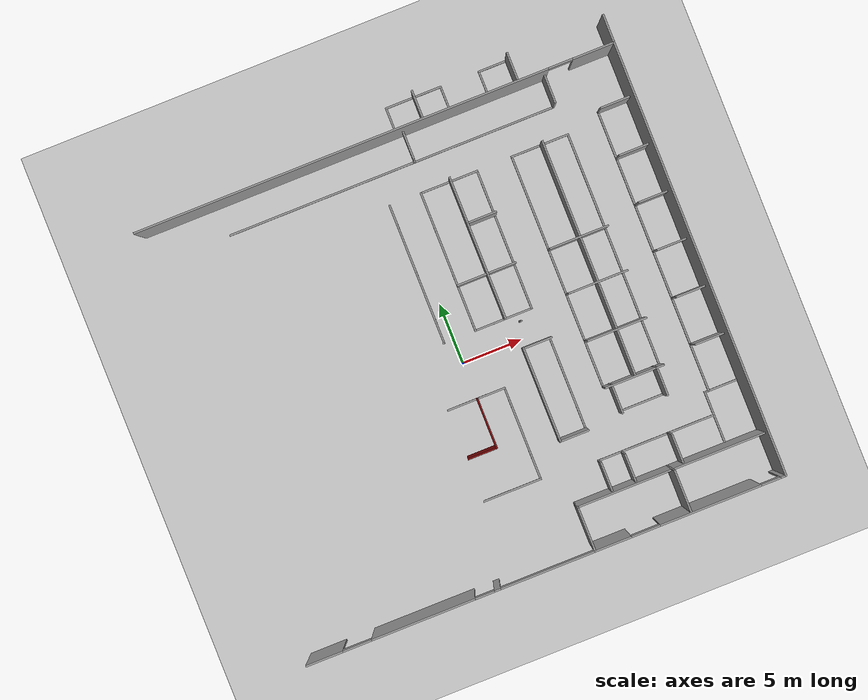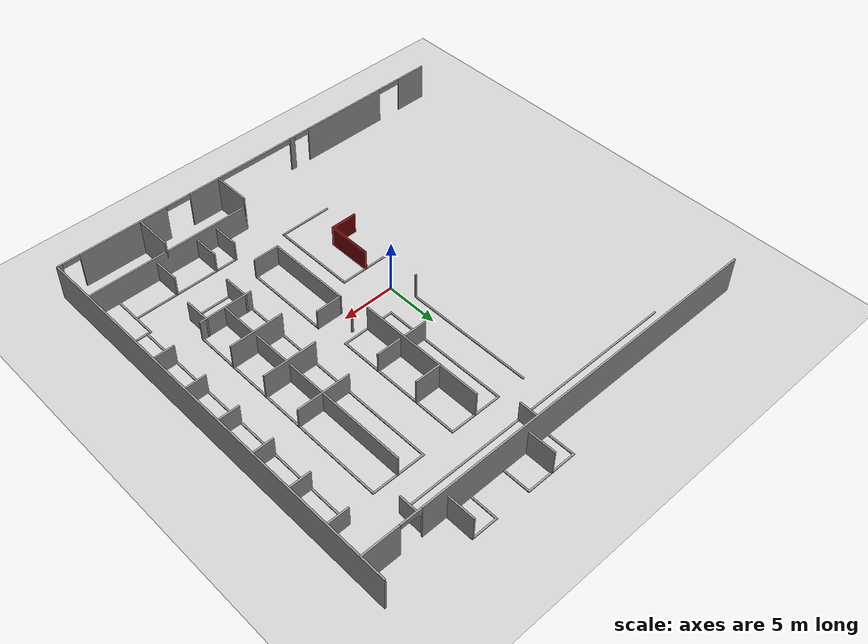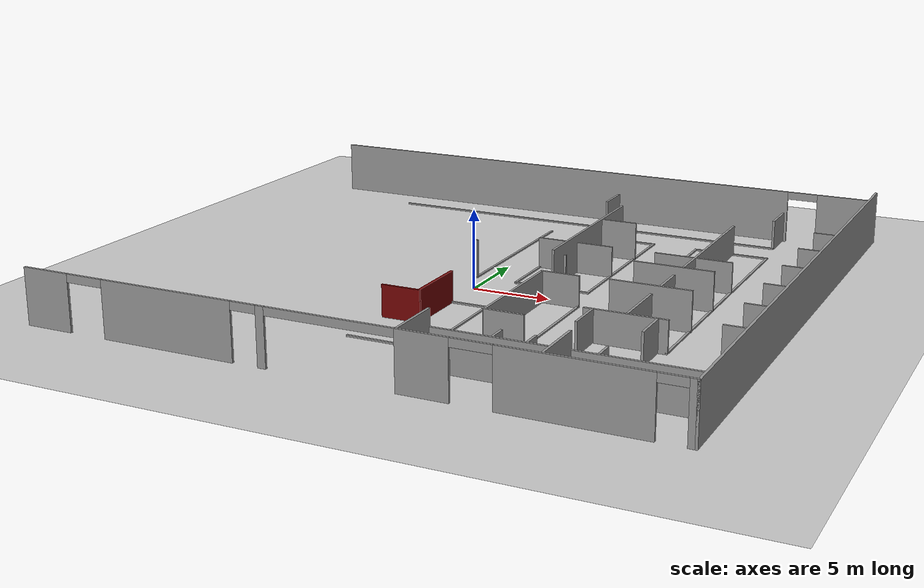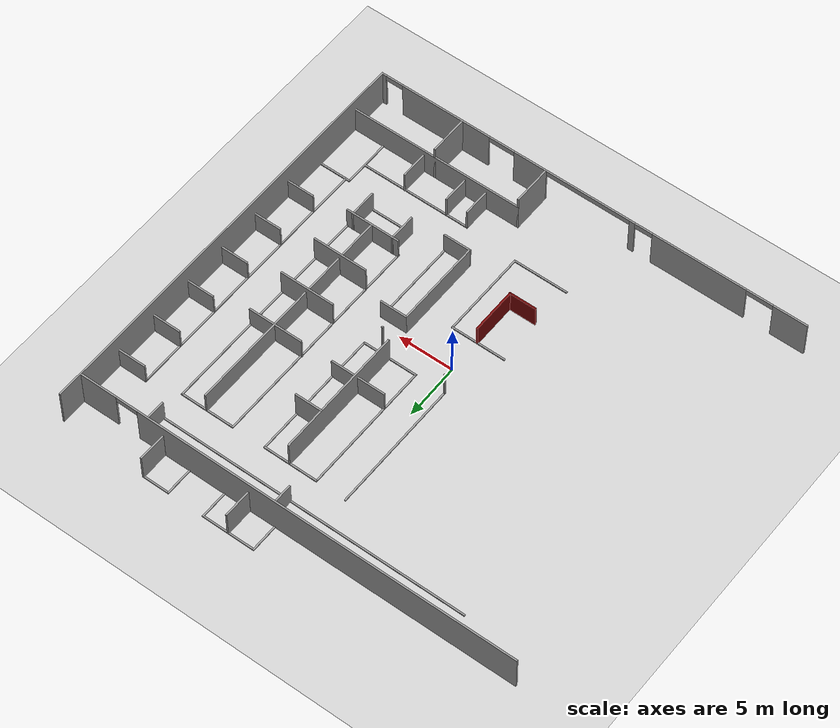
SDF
<sdf version="1.7">
 <world name="default">
  <model name="ground_plane">
   <static>1</static>
   <link name="link">
    <collision name="collision">
     <geometry><plane><normal>0 0 1</normal><size>100 100</size></plane></geometry>
     <surface><friction><ode><mu>100</mu><mu2>50</mu2></ode></friction></surface>
    </collision>
    <visual name="visual">
     <cast_shadows>0</cast_shadows>
     <geometry><plane><normal>0 0 1</normal><size>100 100</size></plane></geometry>
     <material>
      <script><uri>file://media/materials/scripts/gazebo.material</uri><name>Gazebo/Grey</name></script>
     </material>
    </visual>
   </link>
  </model>
  <model name="ATC_hall">
   <pose>0.064513 1.99679 0 0 -0 0</pose>
   <link name="Wall_17">
    <collision name="Wall_17_Collision">
     <geometry><box><size>3.5 0.15 3.5</size></box></geometry>
     <pose>0 0 1.75 0 -0 0</pose>
    </collision>
    <visual name="Wall_17_Visual">
     <pose>0 0 1.75 0 -0 0</pose>
     <geometry><box><size>3.5 0.15 3.5</size></box></geometry>
     <material>
      <script><uri>file://media/materials/scripts/gazebo.material</uri><name>Gazebo/Grey</name></script>
      <ambient>0.890196 0.890196 0.890196 1</ambient>
     </material>
     <meta><layer>0</layer></meta>
    </visual>
    <pose>4.08 -17.407 0 0 -0 1.5708</pose>
   </link>
   <link name="Wall_19">
    <collision name="Wall_19_Collision">
     <geometry><box><size>3.5 0.15 3.5</size></box></geometry>
     <pose>0 0 1.75 0 -0 0</pose>
    </collision>
    <visual name="Wall_19_Visual">
     <pose>0 0 1.75 0 -0 0</pose>
     <geometry><box><size>3.5 0.15 3.5</size></box></geometry>
     <material>
      <script><uri>file://media/materials/scripts/gazebo.material</uri><name>Gazebo/Grey</name></script>
      <ambient>0.890196 0.890196 0.890196 1</ambient>
     </material>
     <meta><layer>0</layer></meta>
    </visual>
    <pose>12.08 -17.407 0 0 -0 1.5708</pose>
   </link>
   <link name="Wall_195">
    <collision name="Wall_195_Collision">
     <geometry><box><size>2.5 0.15 2.5</size></box></geometry>
     <pose>0 0 1.25 0 -0 0</pose>
    </collision>
    <visual name="Wall_195_Visual">
     <pose>0 0 1.25 0 -0 0</pose>
     <geometry><box><size>2.5 0.15 2.5</size></box></geometry>
     <material>
      <script><uri>file://media/materials/scripts/gazebo.material</uri><name>Gazebo/Grey</name></script>
      <ambient>0 0 0 1</ambient>
     </material>
     <meta><layer>0</layer></meta>
    </visual>
    <pose>4.08 18.069 0 0 -0 1.5708</pose>
   </link>
   <link name="Wall_2">
    <pose>0.004999 -19.224 0 0 -0 0</pose>
    <visual name="Wall_2_Visual_0">
     <pose>-18.459 0 1.75 0 -0 0</pose>
     <geometry><box><size>3.082 0.15 3.5</size></box></geometry>
     <material>
      <script><uri>file://media/materials/scripts/gazebo.material</uri><name>Gazebo/Grey</name></script>
      <ambient>0.890196 0.890196 0.890196 1</ambient>
     </material>
     <meta><layer>0</layer></meta>
    </visual>
    <collision name="Wall_2_Collision_0">
     <geometry><box><size>3.082 0.15 3.5</size></box></geometry>
     <pose>-18.459 0 1.75 0 -0 0</pose>
    </collision>
    <visual name="Wall_2_Visual_1">
     <pose>-10.213 0 1.75 0 -0 0</pose>
     <geometry><box><size>8.61 0.15 3.5</size></box></geometry>
     <material>
      <script><uri>file://media/materials/scripts/gazebo.material</uri><name>Gazebo/Grey</name></script>
      <ambient>0.890196 0.890196 0.890196 1</ambient>
     </material>
     <meta><layer>0</layer></meta>
    </visual>
    <collision name="Wall_2_Collision_1">
     <geometry><box><size>8.61 0.15 3.5</size></box></geometry>
     <pose>-10.213 0 1.75 0 -0 0</pose>
    </collision>
    <visual name="Wall_2_Visual_2">
     <pose>-4.048 0 1.75 0 -0 0</pose>
     <geometry><box><size>0.519981 0.15 3.5</size></box></geometry>
     <material>
      <script><uri>file://media/materials/scripts/gazebo.material</uri><name>Gazebo/Grey</name></script>
      <ambient>0.890196 0.890196 0.890196 1</ambient>
     </material>
     <meta><layer>0</layer></meta>
    </visual>
    <collision name="Wall_2_Collision_2">
     <geometry><box><size>0.519981 0.15 3.5</size></box></geometry>
     <pose>-4.048 0 1.75 0 -0 0</pose>
    </collision>
    <visual name="Wall_2_Visual_3">
     <pose>5.54699 0 1.75 0 -0 0</pose>
     <geometry><box><size>3.07002 0.15 3.5</size></box></geometry>
     <material>
      <script><uri>file://media/materials/scripts/gazebo.material</uri><name>Gazebo/Grey</name></script>
      <ambient>0.890196 0.890196 0.890196 1</ambient>
     </material>
     <meta><layer>0</layer></meta>
    </visual>
    <collision name="Wall_2_Collision_3">
     <geometry><box><size>3.07002 0.15 3.5</size></box></geometry>
     <pose>5.54699 0 1.75 0 -0 0</pose>
    </collision>
    <visual name="Wall_2_Visual_4">
     <pose>13.6861 0 1.75 0 -0 0</pose>
     <geometry><box><size>8.40819 0.15 3.5</size></box></geometry>
     <material>
      <script><uri>file://media/materials/scripts/gazebo.material</uri><name>Gazebo/Grey</name></script>
      <ambient>0.890196 0.890196 0.890196 1</ambient>
     </material>
     <meta><layer>0</layer></meta>
    </visual>
    <collision name="Wall_2_Collision_4">
     <geometry><box><size>8.40819 0.15 3.5</size></box></geometry>
     <pose>13.6861 0 1.75 0 -0 0</pose>
    </collision>
    <visual name="Wall_2_Visual_5">
     <pose>19.7451 0 1.75 0 -0 0</pose>
     <geometry><box><size>0.509814 0.15 3.5</size></box></geometry>
     <material>
      <script><uri>file://media/materials/scripts/gazebo.material</uri><name>Gazebo/Grey</name></script>
      <ambient>0.890196 0.890196 0.890196 1</ambient>
     </material>
     <meta><layer>0</layer></meta>
    </visual>
    <collision name="Wall_2_Collision_5">
     <geometry><box><size>0.509814 0.15 3.5</size></box></geometry>
     <pose>19.7451 0 1.75 0 -0 0</pose>
    </collision>
    <visual name="Wall_2_Visual_6">
     <pose>-15.718 0 3.25 0 -0 0</pose>
     <geometry><box><size>2.4 0.15 0.5</size></box></geometry>
     <material>
      <script><uri>file://media/materials/scripts/gazebo.material</uri><name>Gazebo/Grey</name></script>
      <ambient>0.890196 0.890196 0.890196 1</ambient>
     </material>
     <meta><layer>0</layer></meta>
    </visual>
    <collision name="Wall_2_Collision_6">
     <geometry><box><size>2.4 0.15 0.5</size></box></geometry>
     <pose>-15.718 0 3.25 0 -0 0</pose>
    </collision>
    <visual name="Wall_2_Visual_7">
     <pose>-5.108 0 3.25 0 -0 0</pose>
     <geometry><box><size>1.6 0.15 0.5</size></box></geometry>
     <material>
      <script><uri>file://media/materials/scripts/gazebo.material</uri><name>Gazebo/Grey</name></script>
      <ambient>0.890196 0.890196 0.890196 1</ambient>
     </material>
     <meta><layer>0</layer></meta>
    </visual>
    <collision name="Wall_2_Collision_7">
     <geometry><box><size>1.6 0.15 0.5</size></box></geometry>
     <pose>-5.108 0 3.25 0 -0 0</pose>
    </collision>
    <visual name="Wall_2_Visual_8">
     <pose>0.111985 0 3.25 0 -0 0</pose>
     <geometry><box><size>7.8 0.15 0.5</size></box></geometry>
     <material>
      <script><uri>file://media/materials/scripts/gazebo.material</uri><name>Gazebo/Grey</name></script>
      <ambient>0.890196 0.890196 0.890196 1</ambient>
     </material>
     <meta><layer>0</layer></meta>
    </visual>
    <collision name="Wall_2_Collision_8">
     <geometry><box><size>7.8 0.15 0.5</size></box></geometry>
     <pose>0.111985 0 3.25 0 -0 0</pose>
    </collision>
    <visual name="Wall_2_Visual_9">
     <pose>8.282 0 3.25 0 -0 0</pose>
     <geometry><box><size>2.4 0.15 0.5</size></box></geometry>
     <material>
      <script><uri>file://media/materials/scripts/gazebo.material</uri><name>Gazebo/Grey</name></script>
      <ambient>0.890196 0.890196 0.890196 1</ambient>
     </material>
     <meta><layer>0</layer></meta>
    </visual>
    <collision name="Wall_2_Collision_9">
     <geometry><box><size>2.4 0.15 0.5</size></box></geometry>
     <pose>8.282 0 3.25 0 -0 0</pose>
    </collision>
    <visual name="Wall_2_Visual_10">
     <pose>18.6902 0 3.25 0 -0 0</pose>
     <geometry><box><size>1.6 0.15 0.5</size></box></geometry>
     <material>
      <script><uri>file://media/materials/scripts/gazebo.material</uri><name>Gazebo/Grey</name></script>
      <ambient>0.890196 0.890196 0.890196 1</ambient>
     </material>
     <meta><layer>0</layer></meta>
    </visual>
    <collision name="Wall_2_Collision_10">
     <geometry><box><size>1.6 0.15 0.5</size></box></geometry>
     <pose>18.6902 0 3.25 0 -0 0</pose>
    </collision>
   </link>
   <link name="Wall_228">
    <collision name="Wall_228_Collision">
     <geometry><box><size>2.5 0.15 0.1</size></box></geometry>
     <pose>0 0 0.05 0 -0 0</pose>
    </collision>
    <visual name="Wall_228_Visual">
     <pose>0 0 0.05 0 -0 0</pose>
     <geometry><box><size>2.5 0.15 0.1</size></box></geometry>
     <material>
      <script><uri>file://media/materials/scripts/gazebo.material</uri><name>Gazebo/Grey</name></script>
      <ambient>0.462745 0.462745 0.462745 1</ambient>
     </material>
     <meta><layer>0</layer></meta>
    </visual>
    <pose>2.905 19.244 0 0 -0 3.14159</pose>
   </link>
   <link name="Wall_23">
    <collision name="Wall_23_Collision">
     <geometry><box><size>16 0.15 2.5</size></box></geometry>
     <pose>0 0 1.25 0 -0 0</pose>
    </collision>
    <visual name="Wall_23_Visual">
     <pose>0 0 1.25 0 -0 0</pose>
     <geometry><box><size>16 0.15 2.5</size></box></geometry>
     <material>
      <script><uri>file://media/materials/scripts/gazebo.material</uri><name>Gazebo/Grey</name></script>
      <ambient>0.890196 0.890196 0.890196 1</ambient>
     </material>
     <meta><layer>0</layer></meta>
    </visual>
    <pose>12.005 -15.732 0 0 -0 0</pose>
   </link>
   <link name="Wall_230">
    <collision name="Wall_230_Collision">
     <geometry><box><size>2.5 0.15 0.1</size></box></geometry>
     <pose>0 0 0.05 0 -0 0</pose>
    </collision>
    <visual name="Wall_230_Visual">
     <pose>0 0 0.05 0 -0 0</pose>
     <geometry><box><size>2.5 0.15 0.1</size></box></geometry>
     <material>
      <script><uri>file://media/materials/scripts/gazebo.material</uri><name>Gazebo/Grey</name></script>
      <ambient>0.462745 0.462745 0.462745 1</ambient>
     </material>
     <meta><layer>0</layer></meta>
    </visual>
    <pose>1.73 18.069 0 0 -0 -1.5708</pose>
   </link>
   <link name="Wall_232">
    <collision name="Wall_232_Collision">
     <geometry><box><size>2.5 0.15 0.1</size></box></geometry>
     <pose>0 0 0.05 0 -0 0</pose>
    </collision>
    <visual name="Wall_232_Visual">
     <pose>0 0 0.05 0 -0 0</pose>
     <geometry><box><size>2.5 0.15 0.1</size></box></geometry>
     <material>
      <script><uri>file://media/materials/scripts/gazebo.material</uri><name>Gazebo/Grey</name></script>
      <ambient>0.454902 0.454902 0.454902 1</ambient>
     </material>
     <meta><layer>0</layer></meta>
    </visual>
    <pose>5.255 19.244 0 0 -0 0</pose>
   </link>
   <link name="Wall_234">
    <collision name="Wall_234_Collision">
     <geometry><box><size>2.5 0.15 0.1</size></box></geometry>
     <pose>0 0 0.05 0 -0 0</pose>
    </collision>
    <visual name="Wall_234_Visual">
     <pose>0 0 0.05 0 -0 0</pose>
     <geometry><box><size>2.5 0.15 0.1</size></box></geometry>
     <material>
      <script><uri>file://media/materials/scripts/gazebo.material</uri><name>Gazebo/Grey</name></script>
      <ambient>0.454902 0.454902 0.454902 1</ambient>
     </material>
     <meta><layer>0</layer></meta>
    </visual>
    <pose>6.43 18.069 0 0 -0 -1.5708</pose>
   </link>
   <link name="Wall_236">
    <collision name="Wall_236_Collision">
     <geometry><box><size>2.5 0.15 0.1</size></box></geometry>
     <pose>0 0 0.05 0 -0 0</pose>
    </collision>
    <visual name="Wall_236_Visual">
     <pose>0 0 0.05 0 -0 0</pose>
     <geometry><box><size>2.5 0.15 0.1</size></box></geometry>
     <material>
      <script><uri>file://media/materials/scripts/gazebo.material</uri><name>Gazebo/Grey</name></script>
      <ambient>0.454902 0.454902 0.454902 1</ambient>
     </material>
     <meta><layer>0</layer></meta>
    </visual>
    <pose>10.905 19.238 0 0 -0 3.14159</pose>
   </link>
   <link name="Wall_238">
    <collision name="Wall_238_Collision">
     <geometry><box><size>2.5 0.15 0.1</size></box></geometry>
     <pose>0 0 0.05 0 -0 0</pose>
    </collision>
    <visual name="Wall_238_Visual">
     <pose>0 0 0.05 0 -0 0</pose>
     <geometry><box><size>2.5 0.15 0.1</size></box></geometry>
     <material>
      <script><uri>file://media/materials/scripts/gazebo.material</uri><name>Gazebo/Grey</name></script>
      <ambient>0.454902 0.454902 0.454902 1</ambient>
     </material>
     <meta><layer>0</layer></meta>
    </visual>
    <pose>9.73 18.063 0 0 -0 -1.5708</pose>
   </link>
   <link name="Wall_308">
    <collision name="Wall_308_Collision">
     <geometry><box><size>28 0.15 0.1</size></box></geometry>
     <pose>0 0 0.05 0 -0 0</pose>
    </collision>
    <visual name="Wall_308_Visual">
     <pose>0 0 0.05 0 -0 0</pose>
     <geometry><box><size>28 0.15 0.1</size></box></geometry>
     <material>
      <script><uri>file://media/materials/scripts/gazebo.material</uri><name>Gazebo/Grey</name></script>
      <ambient>0.454902 0.454902 0.454902 1</ambient>
     </material>
     <meta><layer>0</layer></meta>
    </visual>
    <pose>0.304999 14.394 0 0 -0 -0.000287</pose>
   </link>
   <link name="Wall_314">
    <collision name="Wall_314_Collision">
     <geometry><box><size>2.5 0.15 2</size></box></geometry>
     <pose>0 0 1 0 -0 0</pose>
    </collision>
    <visual name="Wall_314_Visual">
     <pose>0 0 1 0 -0 0</pose>
     <geometry><box><size>2.5 0.15 2</size></box></geometry>
     <material>
      <script><uri>file://media/materials/scripts/gazebo.material</uri><name>Gazebo/Grey</name></script>
      <ambient>0 0 0 1</ambient>
     </material>
     <meta><layer>0</layer></meta>
    </visual>
    <pose>2.263 15.573 0 0 -0 -1.5708</pose>
   </link>
   <link name="Wall_323">
    <collision name="Wall_323_Collision">
     <geometry><box><size>2.5 0.15 2</size></box></geometry>
     <pose>0 0 1 0 -0 0</pose>
    </collision>
    <visual name="Wall_323_Visual">
     <pose>0 0 1 0 -0 0</pose>
     <geometry><box><size>2.5 0.15 2</size></box></geometry>
     <material>
      <script><uri>file://media/materials/scripts/gazebo.material</uri><name>Gazebo/Grey</name></script>
      <ambient>0 0 0 1</ambient>
     </material>
     <meta><layer>0</layer></meta>
    </visual>
    <pose>14.237 15.565 0 0 -0 -1.57675</pose>
   </link>
   <link name="Wall_331">
    <collision name="Wall_331_Collision">
     <geometry><box><size>12 0.15 0.1</size></box></geometry>
     <pose>0 0 0.05 0 -0 0</pose>
    </collision>
    <visual name="Wall_331_Visual">
     <pose>0 0 0.05 0 -0 0</pose>
     <geometry><box><size>12 0.15 0.1</size></box></geometry>
     <material>
      <script><uri>file://media/materials/scripts/gazebo.material</uri><name>Gazebo/Grey</name></script>
      <ambient>0.454902 0.454902 0.454902 1</ambient>
     </material>
     <meta><layer>0</layer></meta>
    </visual>
    <pose>-0.885001 5.963 0 0 -0 -1.5708</pose>
   </link>
   <link name="Wall_332">
    <collision name="Wall_332_Collision">
     <geometry><box><size>0.15 0.15 2.5</size></box></geometry>
     <pose>0 0 1.25 0 -0 0</pose>
    </collision>
    <visual name="Wall_332_Visual">
     <pose>0 0 1.25 0 -0 0</pose>
     <geometry><box><size>0.15 0.15 2.5</size></box></geometry>
     <material>
      <script><uri>file://media/materials/scripts/gazebo.material</uri><name>Gazebo/Grey</name></script>
      <ambient>1 1 1 1</ambient>
     </material>
     <meta><layer>0</layer></meta>
    </visual>
    <pose>-0.885001 0.037999 0 0 -0 0</pose>
   </link>
   <link name="Wall_354">
    <collision name="Wall_354_Collision">
     <geometry><box><size>12 0.15 0.1</size></box></geometry>
     <pose>0 0 0.05 0 -0 0</pose>
    </collision>
    <visual name="Wall_354_Visual">
     <pose>0 0 0.05 0 -0 0</pose>
     <geometry><box><size>12 0.15 0.1</size></box></geometry>
     <material>
      <script><uri>file://media/materials/scripts/gazebo.material</uri><name>Gazebo/Grey</name></script>
      <ambient>0.454902 0.454902 0.454902 1</ambient>
     </material>
     <meta><layer>0</layer></meta>
    </visual>
    <pose>1.815 5.963 0 0 -0 -1.5708</pose>
   </link>
   <link name="Wall_358">
    <collision name="Wall_358_Collision">
     <geometry><box><size>5 0.15 0.1</size></box></geometry>
     <pose>0 0 0.05 0 -0 0</pose>
    </collision>
    <visual name="Wall_358_Visual">
     <pose>0 0 0.05 0 -0 0</pose>
     <geometry><box><size>5 0.15 0.1</size></box></geometry>
     <material>
      <script><uri>file://media/materials/scripts/gazebo.material</uri><name>Gazebo/Grey</name></script>
      <ambient>0.454902 0.454902 0.454902 1</ambient>
     </material>
     <meta><layer>0</layer></meta>
    </visual>
    <pose>4.24 11.888 0 0 -0 0</pose>
   </link>
   <link name="Wall_360">
    <collision name="Wall_360_Collision">
     <geometry><box><size>12 0.15 0.1</size></box></geometry>
     <pose>0 0 0.05 0 -0 0</pose>
    </collision>
    <visual name="Wall_360_Visual">
     <pose>0 0 0.05 0 -0 0</pose>
     <geometry><box><size>12 0.15 0.1</size></box></geometry>
     <material>
      <script><uri>file://media/materials/scripts/gazebo.material</uri><name>Gazebo/Grey</name></script>
      <ambient>0.454902 0.454902 0.454902 1</ambient>
     </material>
     <meta><layer>0</layer></meta>
    </visual>
    <pose>6.665 5.963 0 0 -0 -1.5708</pose>
   </link>
   <link name="Wall_362">
    <collision name="Wall_362_Collision">
     <geometry><box><size>5 0.15 0.1</size></box></geometry>
     <pose>0 0 0.05 0 -0 0</pose>
    </collision>
    <visual name="Wall_362_Visual">
     <pose>0 0 0.05 0 -0 0</pose>
     <geometry><box><size>5 0.15 0.1</size></box></geometry>
     <material>
      <script><uri>file://media/materials/scripts/gazebo.material</uri><name>Gazebo/Grey</name></script>
      <ambient>0.454902 0.454902 0.454902 1</ambient>
     </material>
     <meta><layer>0</layer></meta>
    </visual>
    <pose>4.24 0.037999 0 0 -0 3.14159</pose>
   </link>
   <link name="Wall_364">
    <collision name="Wall_364_Collision">
     <geometry><box><size>5 0.15 2</size></box></geometry>
     <pose>0 0 1 0 -0 0</pose>
    </collision>
    <visual name="Wall_364_Visual">
     <pose>0 0 1 0 -0 0</pose>
     <geometry><box><size>5 0.15 2</size></box></geometry>
     <material>
      <script><uri>file://media/materials/scripts/gazebo.material</uri><name>Gazebo/Grey</name></script>
      <ambient>0 0 0 1</ambient>
     </material>
     <meta><layer>0</layer></meta>
    </visual>
    <pose>4.239 3.848 0 0 -0 0</pose>
   </link>
   <link name="Wall_366">
    <collision name="Wall_366_Collision">
     <geometry><box><size>11.9 0.15 2.5</size></box></geometry>
     <pose>0 0 1.25 0 -0 0</pose>
    </collision>
    <visual name="Wall_366_Visual">
     <pose>0 0 1.25 0 -0 0</pose>
     <geometry><box><size>11.9 0.15 2.5</size></box></geometry>
     <material>
      <script><uri>file://media/materials/scripts/gazebo.material</uri><name>Gazebo/Grey</name></script>
      <ambient>0 0 0 1</ambient>
     </material>
     <meta><layer>0</layer></meta>
    </visual>
    <pose>4.315 5.986 0 0 -0 -1.5708</pose>
   </link>
   <link name="Wall_368">
    <collision name="Wall_368_Collision">
     <geometry><box><size>5 0.15 0.1</size></box></geometry>
     <pose>0 0 0.05 0 -0 0</pose>
    </collision>
    <visual name="Wall_368_Visual">
     <pose>0 0 0.05 0 -0 0</pose>
     <geometry><box><size>5 0.15 0.1</size></box></geometry>
     <material>
      <script><uri>file://media/materials/scripts/gazebo.material</uri><name>Gazebo/Grey</name></script>
      <ambient>0.454902 0.454902 0.454902 1</ambient>
     </material>
     <meta><layer>0</layer></meta>
    </visual>
    <pose>12.09 11.923 0 0 -0 0</pose>
   </link>
   <link name="Wall_370">
    <collision name="Wall_370_Collision">
     <geometry><box><size>20 0.15 0.1</size></box></geometry>
     <pose>0 0 0.05 0 -0 0</pose>
    </collision>
    <visual name="Wall_370_Visual">
     <pose>0 0 0.05 0 -0 0</pose>
     <geometry><box><size>20 0.15 0.1</size></box></geometry>
     <material>
      <script><uri>file://media/materials/scripts/gazebo.material</uri><name>Gazebo/Grey</name></script>
      <ambient>0.454902 0.454902 0.454902 1</ambient>
     </material>
     <meta><layer>0</layer></meta>
    </visual>
    <pose>9.665 1.998 0 0 -0 -1.5708</pose>
   </link>
   <link name="Wall_372">
    <collision name="Wall_372_Collision">
     <geometry><box><size>20 0.15 0.1</size></box></geometry>
     <pose>0 0 0.05 0 -0 0</pose>
    </collision>
    <visual name="Wall_372_Visual">
     <pose>0 0 0.05 0 -0 0</pose>
     <geometry><box><size>20 0.15 0.1</size></box></geometry>
     <material>
      <script><uri>file://media/materials/scripts/gazebo.material</uri><name>Gazebo/Grey</name></script>
      <ambient>0.462745 0.462745 0.462745 1</ambient>
     </material>
     <meta><layer>0</layer></meta>
    </visual>
    <pose>14.515 1.998 0 0 -0 -1.5708</pose>
   </link>
   <link name="Wall_374">
    <collision name="Wall_374_Collision">
     <geometry><box><size>5 0.15 2</size></box></geometry>
     <pose>0 0 1 0 -0 0</pose>
    </collision>
    <visual name="Wall_374_Visual">
     <pose>0 0 1 0 -0 0</pose>
     <geometry><box><size>5 0.15 2</size></box></geometry>
     <material>
      <script><uri>file://media/materials/scripts/gazebo.material</uri><name>Gazebo/Grey</name></script>
      <ambient>0 0 0 1</ambient>
     </material>
     <meta><layer>0</layer></meta>
    </visual>
    <pose>12.09 -7.927 0 0 -0 0</pose>
   </link>
   <link name="Wall_376">
    <collision name="Wall_376_Collision">
     <geometry><box><size>2.5 0.15 2.5</size></box></geometry>
     <pose>0 0 1.25 0 -0 0</pose>
    </collision>
    <visual name="Wall_376_Visual">
     <pose>0 0 1.25 0 -0 0</pose>
     <geometry><box><size>2.5 0.15 2.5</size></box></geometry>
     <material>
      <script><uri>file://media/materials/scripts/gazebo.material</uri><name>Gazebo/Grey</name></script>
      <ambient>0 0 0 1</ambient>
     </material>
     <meta><layer>0</layer></meta>
    </visual>
    <pose>5.50645 8.06947 0 0 -0 0</pose>
   </link>
   <link name="Wall_378">
    <collision name="Wall_378_Collision">
     <geometry><box><size>5 0.15 2</size></box></geometry>
     <pose>0 0 1 0 -0 0</pose>
    </collision>
    <visual name="Wall_378_Visual">
     <pose>0 0 1 0 -0 0</pose>
     <geometry><box><size>5 0.15 2</size></box></geometry>
     <material>
      <script><uri>file://media/materials/scripts/gazebo.material</uri><name>Gazebo/Grey</name></script>
      <ambient>0 0 0 1</ambient>
     </material>
     <meta><layer>0</layer></meta>
    </visual>
    <pose>12.076 3.848 0 0 -0 0</pose>
   </link>
   <link name="Wall_380">
    <collision name="Wall_380_Collision">
     <geometry><box><size>19.9 0.15 2</size></box></geometry>
     <pose>0 0 1 0 -0 0</pose>
    </collision>
    <visual name="Wall_380_Visual">
     <pose>0 0 1 0 -0 0</pose>
     <geometry><box><size>19.9 0.15 2</size></box></geometry>
     <material>
      <script><uri>file://media/materials/scripts/gazebo.material</uri><name>Gazebo/Grey</name></script>
      <ambient>0 0 0 1</ambient>
     </material>
     <meta><layer>0</layer></meta>
    </visual>
    <pose>12.165 2.022 0 0 -0 -1.5708</pose>
   </link>
   <link name="Wall_382">
    <collision name="Wall_382_Collision">
     <geometry><box><size>5.00003 0.15 2.5</size></box></geometry>
     <pose>0 0 1.25 0 -0 0</pose>
    </collision>
    <visual name="Wall_382_Visual">
     <pose>0 0 1.25 0 -0 0</pose>
     <geometry><box><size>5.00003 0.15 2.5</size></box></geometry>
     <material>
      <script><uri>file://media/materials/scripts/gazebo.material</uri><name>Gazebo/Grey</name></script>
      <ambient>0 0 0 1</ambient>
     </material>
     <meta><layer>0</layer></meta>
    </visual>
    <pose>12.107 0.037999 0 0 -0 0</pose>
   </link>
   <link name="Wall_384">
    <collision name="Wall_384_Collision">
     <geometry><box><size>5 0.15 2.5</size></box></geometry>
     <pose>0 0 1.25 0 -0 0</pose>
    </collision>
    <visual name="Wall_384_Visual">
     <pose>0 0 1.25 0 -0 0</pose>
     <geometry><box><size>5 0.15 2.5</size></box></geometry>
     <material>
      <script><uri>file://media/materials/scripts/gazebo.material</uri><name>Gazebo/Grey</name></script>
      <ambient>0 0 0 1</ambient>
     </material>
     <meta><layer>0</layer></meta>
    </visual>
    <pose>12.107 -3.962 0 0 -0 0</pose>
   </link>
   <link name="Wall_386">
    <collision name="Wall_386_Collision">
     <geometry><box><size>2.5 0.15 2</size></box></geometry>
     <pose>0 0 1 0 -0 0</pose>
    </collision>
    <visual name="Wall_386_Visual">
     <pose>0 0 1 0 -0 0</pose>
     <geometry><box><size>2.5 0.15 2</size></box></geometry>
     <material>
      <script><uri>file://media/materials/scripts/gazebo.material</uri><name>Gazebo/Grey</name></script>
      <ambient>0 0 0 1</ambient>
     </material>
     <meta><layer>0</layer></meta>
    </visual>
    <pose>10.165 -9.075 0 0 -0 -1.5708</pose>
   </link>
   <link name="Wall_388">
    <collision name="Wall_388_Collision">
     <geometry><box><size>2.5 0.15 2</size></box></geometry>
     <pose>0 0 1 0 -0 0</pose>
    </collision>
    <visual name="Wall_388_Visual">
     <pose>0 0 1 0 -0 0</pose>
     <geometry><box><size>2.5 0.15 2</size></box></geometry>
     <material>
      <script><uri>file://media/materials/scripts/gazebo.material</uri><name>Gazebo/Grey</name></script>
      <ambient>0 0 0 1</ambient>
     </material>
     <meta><layer>0</layer></meta>
    </visual>
    <pose>13.965 -9.075 0 0 -0 -1.5708</pose>
   </link>
   <link name="Wall_390">
    <collision name="Wall_390_Collision">
     <geometry><box><size>3.95 0.15 0.1</size></box></geometry>
     <pose>0 0 0.05 0 -0 0</pose>
    </collision>
    <visual name="Wall_390_Visual">
     <pose>0 0 0.05 0 -0 0</pose>
     <geometry><box><size>3.95 0.15 0.1</size></box></geometry>
     <material>
      <script><uri>file://media/materials/scripts/gazebo.material</uri><name>Gazebo/Grey</name></script>
      <ambient>0.462745 0.462745 0.462745 1</ambient>
     </material>
     <meta><layer>0</layer></meta>
    </visual>
    <pose>12.065 -10.25 0 0 -0 0</pose>
   </link>
   <link name="Wall_401">
    <collision name="Wall_401_Collision">
     <geometry><box><size>5 0.15 0.1</size></box></geometry>
     <pose>0 0 0.05 0 -0 0</pose>
    </collision>
    <visual name="Wall_401_Visual">
     <pose>0 0 0.05 0 -0 0</pose>
     <geometry><box><size>5 0.15 0.1</size></box></geometry>
     <material>
      <script><uri>file://media/materials/scripts/gazebo.material</uri><name>Gazebo/Grey</name></script>
      <ambient>0.462745 0.462745 0.462745 1</ambient>
     </material>
     <meta><layer>0</layer></meta>
    </visual>
    <pose>-0.139001 -5.098 0 0 -0 0</pose>
   </link>
   <link name="Wall_405">
    <collision name="Wall_405_Collision">
     <geometry><box><size>5 0.15 0.1</size></box></geometry>
     <pose>0 0 0.05 0 -0 0</pose>
    </collision>
    <visual name="Wall_405_Visual">
     <pose>0 0 0.05 0 -0 0</pose>
     <geometry><box><size>5 0.15 0.1</size></box></geometry>
     <material>
      <script><uri>file://media/materials/scripts/gazebo.material</uri><name>Gazebo/Grey</name></script>
      <ambient>0.462745 0.462745 0.462745 1</ambient>
     </material>
     <meta><layer>0</layer></meta>
    </visual>
    <pose>-0.139001 -12.948 0 0 -0 0</pose>
   </link>
   <link name="Wall_407">
    <collision name="Wall_407_Collision">
     <geometry><box><size>8 0.15 0.1</size></box></geometry>
     <pose>0 0 0.05 0 -0 0</pose>
    </collision>
    <visual name="Wall_407_Visual">
     <pose>0 0 0.05 0 -0 0</pose>
     <geometry><box><size>8 0.15 0.1</size></box></geometry>
     <material>
      <script><uri>file://media/materials/scripts/gazebo.material</uri><name>Gazebo/Grey</name></script>
      <ambient>0.462745 0.462745 0.462745 1</ambient>
     </material>
     <meta><layer>0</layer></meta>
    </visual>
    <pose>2.286 -9.023 0 0 -0 -1.5708</pose>
   </link>
   <link name="Wall_409">
    <collision name="Wall_409_Collision">
     <geometry><box><size>4.2 0.15 2</size></box></geometry>
     <pose>0 0 1 0 -0 0</pose>
    </collision>
    <visual name="Wall_409_Visual">
     <pose>0 0 1 0 -0 0</pose>
     <geometry><box><size>4.2 0.15 2</size></box></geometry>
     <material>
      <script><uri>file://media/materials/scripts/gazebo.material</uri><name>Gazebo/Grey</name></script>
      <ambient>0.462745 0.0196078 0.0196078 1</ambient>
     </material>
     <meta><layer>0</layer></meta>
    </visual>
    <pose>-0.064001 -7.123 0 0 -0 -1.5708</pose>
   </link>
   <link name="Wall_412">
    <collision name="Wall_412_Collision">
     <geometry><box><size>2.5 0.15 2</size></box></geometry>
     <pose>0 0 1 0 -0 0</pose>
    </collision>
    <visual name="Wall_412_Visual">
     <pose>0 0 1 0 -0 0</pose>
     <geometry><box><size>2.5 0.15 2</size></box></geometry>
     <material>
      <script><uri>file://media/materials/scripts/gazebo.material</uri><name>Gazebo/Grey</name></script>
      <ambient>0.462745 0.0196078 0.0196078 1</ambient>
     </material>
     <meta><layer>0</layer></meta>
    </visual>
    <pose>-1.239 -9.148 0 0 -0 3.14159</pose>
   </link>
   <link name="Wall_415">
    <collision name="Wall_415_Collision">
     <geometry><box><size>2.5 0.15 2</size></box></geometry>
     <pose>0 0 1 0 -0 0</pose>
    </collision>
    <visual name="Wall_415_Visual">
     <pose>0 0 1 0 -0 0</pose>
     <geometry><box><size>2.5 0.15 2</size></box></geometry>
     <material>
      <script><uri>file://media/materials/scripts/gazebo.material</uri><name>Gazebo/Grey</name></script>
      <ambient>0 0 0 1</ambient>
     </material>
     <meta><layer>0</layer></meta>
    </visual>
    <pose>5.961 -10.523 0 0 -0 0</pose>
   </link>
   <link name="Wall_418">
    <collision name="Wall_418_Collision">
     <geometry><box><size>8 0.15 2</size></box></geometry>
     <pose>0 0 1 0 -0 0</pose>
    </collision>
    <visual name="Wall_418_Visual">
     <pose>0 0 1 0 -0 0</pose>
     <geometry><box><size>8 0.15 2</size></box></geometry>
     <material>
      <script><uri>file://media/materials/scripts/gazebo.material</uri><name>Gazebo/Grey</name></script>
      <ambient>0 0 0 1</ambient>
     </material>
     <meta><layer>0</layer></meta>
    </visual>
    <pose>4.786 -6.598 0 0 -0 1.5708</pose>
   </link>
   <link name="Wall_420">
    <collision name="Wall_420_Collision">
     <geometry><box><size>2.5 0.15 2</size></box></geometry>
     <pose>0 0 1 0 -0 0</pose>
    </collision>
    <visual name="Wall_420_Visual">
     <pose>0 0 1 0 -0 0</pose>
     <geometry><box><size>2.5 0.15 2</size></box></geometry>
     <material>
      <script><uri>file://media/materials/scripts/gazebo.material</uri><name>Gazebo/Grey</name></script>
      <ambient>0 0 0 1</ambient>
     </material>
     <meta><layer>0</layer></meta>
    </visual>
    <pose>5.961 -2.673 0 0 -0 0</pose>
   </link>
   <link name="Wall_422">
    <collision name="Wall_422_Collision">
     <geometry><box><size>8 0.15 0.1</size></box></geometry>
     <pose>0 0 0.05 0 -0 0</pose>
    </collision>
    <visual name="Wall_422_Visual">
     <pose>0 0 0.05 0 -0 0</pose>
     <geometry><box><size>8 0.15 0.1</size></box></geometry>
     <material>
      <script><uri>file://media/materials/scripts/gazebo.material</uri><name>Gazebo/Grey</name></script>
      <ambient>1 1 1 1</ambient>
     </material>
     <meta><layer>0</layer></meta>
    </visual>
    <pose>7.136 -6.598 0 0 -0 -1.5708</pose>
   </link>
   <link name="Wall_424">
    <collision name="Wall_424_Collision">
     <geometry><box><size>2.5 0.15 2</size></box></geometry>
     <pose>0 0 1 0 -0 0</pose>
    </collision>
    <visual name="Wall_424_Visual">
     <pose>0 0 1 0 -0 0</pose>
     <geometry><box><size>2.5 0.15 2</size></box></geometry>
     <material>
      <script><uri>file://media/materials/scripts/gazebo.material</uri><name>Gazebo/Grey</name></script>
      <ambient>0 0 0 1</ambient>
     </material>
     <meta><layer>0</layer></meta>
    </visual>
    <pose>7.13 -14.483 0 0 -0 -1.5708</pose>
   </link>
   <link name="Wall_426">
    <collision name="Wall_426_Collision">
     <geometry><box><size>10 0.15 0.1</size></box></geometry>
     <pose>0 0 0.05 0 -0 0</pose>
    </collision>
    <visual name="Wall_426_Visual">
     <pose>0 0 0.05 0 -0 0</pose>
     <geometry><box><size>10 0.15 0.1</size></box></geometry>
     <material>
      <script><uri>file://media/materials/scripts/gazebo.material</uri><name>Gazebo/Grey</name></script>
      <ambient>0.462745 0.462745 0.462745 1</ambient>
     </material>
     <meta><layer>0</layer></meta>
    </visual>
    <pose>12.055 -13.308 0 0 -0 0</pose>
   </link>
   <link name="Wall_428">
    <collision name="Wall_428_Collision">
     <geometry><box><size>2.9 0.15 0.1</size></box></geometry>
     <pose>0 0 0.05 0 -0 0</pose>
    </collision>
    <visual name="Wall_428_Visual">
     <pose>0 0 0.05 0 -0 0</pose>
     <geometry><box><size>2.9 0.15 0.1</size></box></geometry>
     <material>
      <script><uri>file://media/materials/scripts/gazebo.material</uri><name>Gazebo/Grey</name></script>
      <ambient>0.462745 0.462745 0.462745 1</ambient>
     </material>
     <meta><layer>0</layer></meta>
    </visual>
    <pose>18.476 -11.352 0 0 -0 3.14159</pose>
   </link>
   <link name="Wall_436">
    <collision name="Wall_436_Collision">
     <geometry><box><size>4.5 0.15 0.1</size></box></geometry>
     <pose>0 0 0.05 0 -0 0</pose>
    </collision>
    <visual name="Wall_436_Visual">
     <pose>0 0 0.05 0 -0 0</pose>
     <geometry><box><size>4.5 0.15 0.1</size></box></geometry>
     <material>
      <script><uri>file://media/materials/scripts/gazebo.material</uri><name>Gazebo/Grey</name></script>
      <ambient>0.462745 0.462745 0.462745 1</ambient>
     </material>
     <meta><layer>0</layer></meta>
    </visual>
    <pose>17.101 -13.527 0 0 -0 -1.5708</pose>
   </link>
   <link name="Wall_438">
    <collision name="Wall_438_Collision">
     <geometry><box><size>24.09 0.15 0.1</size></box></geometry>
     <pose>0 0 0.05 0 -0 0</pose>
    </collision>
    <visual name="Wall_438_Visual">
     <pose>0 0 0.05 0 -0 0</pose>
     <geometry><box><size>24.09 0.15 0.1</size></box></geometry>
     <material>
      <script><uri>file://media/materials/scripts/gazebo.material</uri><name>Gazebo/Grey</name></script>
      <ambient>0.462745 0.462745 0.462745 1</ambient>
     </material>
     <meta><layer>0</layer></meta>
    </visual>
    <pose>17.43 0.677999 0 0 -0 1.5708</pose>
   </link>
   <link name="Wall_441">
    <collision name="Wall_441_Collision">
     <geometry><box><size>2.5 0.15 2</size></box></geometry>
     <pose>0 0 1 0 -0 0</pose>
    </collision>
    <visual name="Wall_441_Visual">
     <pose>0 0 1 0 -0 0</pose>
     <geometry><box><size>2.5 0.15 2</size></box></geometry>
     <material>
      <script><uri>file://media/materials/scripts/gazebo.material</uri><name>Gazebo/Grey</name></script>
      <ambient>0 0 0 1</ambient>
     </material>
     <meta><layer>0</layer></meta>
    </visual>
    <pose>18.655 -7.352 0 0 -0 0</pose>
   </link>
   <link name="Wall_443">
    <collision name="Wall_443_Collision">
     <geometry><box><size>2.5 0.15 2</size></box></geometry>
     <pose>0 0 1 0 -0 0</pose>
    </collision>
    <visual name="Wall_443_Visual">
     <pose>0 0 1 0 -0 0</pose>
     <geometry><box><size>2.5 0.15 2</size></box></geometry>
     <material>
      <script><uri>file://media/materials/scripts/gazebo.material</uri><name>Gazebo/Grey</name></script>
      <ambient>0 0 0 1</ambient>
     </material>
     <meta><layer>0</layer></meta>
    </visual>
    <pose>18.655 -3.352 0 0 -0 0</pose>
   </link>
   <link name="Wall_445">
    <collision name="Wall_445_Collision">
     <geometry><box><size>2.5 0.15 2</size></box></geometry>
     <pose>0 0 1 0 -0 0</pose>
    </collision>
    <visual name="Wall_445_Visual">
     <pose>0 0 1 0 -0 0</pose>
     <geometry><box><size>2.5 0.15 2</size></box></geometry>
     <material>
      <script><uri>file://media/materials/scripts/gazebo.material</uri><name>Gazebo/Grey</name></script>
      <ambient>0 0 0 1</ambient>
     </material>
     <meta><layer>0</layer></meta>
    </visual>
    <pose>18.628 0.647999 0 0 -0 0</pose>
   </link>
   <link name="Wall_447">
    <collision name="Wall_447_Collision">
     <geometry><box><size>2.5 0.15 2</size></box></geometry>
     <pose>0 0 1 0 -0 0</pose>
    </collision>
    <visual name="Wall_447_Visual">
     <pose>0 0 1 0 -0 0</pose>
     <geometry><box><size>2.5 0.15 2</size></box></geometry>
     <material>
      <script><uri>file://media/materials/scripts/gazebo.material</uri><name>Gazebo/Grey</name></script>
      <ambient>0 0 0 1</ambient>
     </material>
     <meta><layer>0</layer></meta>
    </visual>
    <pose>18.655 4.648 0 0 -0 0</pose>
   </link>
   <link name="Wall_449">
    <collision name="Wall_449_Collision">
     <geometry><box><size>2.5 0.15 2</size></box></geometry>
     <pose>0 0 1 0 -0 0</pose>
    </collision>
    <visual name="Wall_449_Visual">
     <pose>0 0 1 0 -0 0</pose>
     <geometry><box><size>2.5 0.15 2</size></box></geometry>
     <material>
      <script><uri>file://media/materials/scripts/gazebo.material</uri><name>Gazebo/Grey</name></script>
      <ambient>0 0 0 1</ambient>
     </material>
     <meta><layer>0</layer></meta>
    </visual>
    <pose>18.601 8.648 0 0 -0 0</pose>
   </link>
   <link name="Wall_451">
    <collision name="Wall_451_Collision">
     <geometry><box><size>2.5 0.15 2</size></box></geometry>
     <pose>0 0 1 0 -0 0</pose>
    </collision>
    <visual name="Wall_451_Visual">
     <pose>0 0 1 0 -0 0</pose>
     <geometry><box><size>2.5 0.15 2</size></box></geometry>
     <material>
      <script><uri>file://media/materials/scripts/gazebo.material</uri><name>Gazebo/Grey</name></script>
      <ambient>0 0 0 1</ambient>
     </material>
     <meta><layer>0</layer></meta>
    </visual>
    <pose>18.605 12.648 0 0 -0 0</pose>
   </link>
   <link name="Wall_455">
    <collision name="Wall_455_Collision">
     <geometry><box><size>2.5 0.15 2</size></box></geometry>
     <pose>0 0 1 0 -0 0</pose>
    </collision>
    <visual name="Wall_455_Visual">
     <pose>0 0 1 0 -0 0</pose>
     <geometry><box><size>2.5 0.15 2</size></box></geometry>
     <material>
      <script><uri>file://media/materials/scripts/gazebo.material</uri><name>Gazebo/Grey</name></script>
      <ambient>0 0 0 1</ambient>
     </material>
     <meta><layer>0</layer></meta>
    </visual>
    <pose>9.13 -14.534 0 0 -0 -1.5708</pose>
   </link>
   <link name="Wall_457">
    <collision name="Wall_457_Collision">
     <geometry><box><size>2.5 0.15 2</size></box></geometry>
     <pose>0 0 1 0 -0 0</pose>
    </collision>
    <visual name="Wall_457_Visual">
     <pose>0 0 1 0 -0 0</pose>
     <geometry><box><size>2.5 0.15 2</size></box></geometry>
     <material>
      <script><uri>file://media/materials/scripts/gazebo.material</uri><name>Gazebo/Grey</name></script>
      <ambient>0 0 0 1</ambient>
     </material>
     <meta><layer>0</layer></meta>
    </visual>
    <pose>13.13 -14.465 0 0 -0 -1.5708</pose>
   </link>
   <link name="Wall_8">
    <collision name="Wall_8_Collision">
     <geometry><box><size>38.38 0.15 3.5</size></box></geometry>
     <pose>0 0 1.75 0 -0 0</pose>
    </collision>
    <visual name="Wall_8_Visual">
     <pose>0 0 1.75 0 -0 0</pose>
     <geometry><box><size>38.38 0.15 3.5</size></box></geometry>
     <material>
      <script><uri>file://media/materials/scripts/gazebo.material</uri><name>Gazebo/Grey</name></script>
      <ambient>0.890196 0.890196 0.890196 1</ambient>
     </material>
     <meta><layer>0</layer></meta>
    </visual>
    <pose>19.93 -0.109001 0 0 -0 1.5708</pose>
   </link>
   <link name="Wall_91">
    <pose>-0.005001 16.749 0 0 -0 0</pose>
    <visual name="Wall_91_Visual_0">
     <pose>-2.754 0 1.75 0 -0 0</pose>
     <geometry><box><size>34.492 0.15 3.5</size></box></geometry>
     <material>
      <script><uri>file://media/materials/scripts/gazebo.material</uri><name>Gazebo/Grey</name></script>
      <ambient>0.890196 0.890196 0.890196 1</ambient>
     </material>
     <meta><layer>0</layer></meta>
    </visual>
    <collision name="Wall_91_Collision_0">
     <geometry><box><size>34.492 0.15 3.5</size></box></geometry>
     <pose>-2.754 0 1.75 0 -0 0</pose>
    </collision>
    <visual name="Wall_91_Visual_1">
     <pose>18.246 0 1.75 0 -0 0</pose>
     <geometry><box><size>3.508 0.15 3.5</size></box></geometry>
     <material>
      <script><uri>file://media/materials/scripts/gazebo.material</uri><name>Gazebo/Grey</name></script>
      <ambient>0.890196 0.890196 0.890196 1</ambient>
     </material>
     <meta><layer>0</layer></meta>
    </visual>
    <collision name="Wall_91_Collision_1">
     <geometry><box><size>3.508 0.15 3.5</size></box></geometry>
     <pose>18.246 0 1.75 0 -0 0</pose>
    </collision>
    <visual name="Wall_91_Visual_2">
     <pose>15.492 0 3.25 0 -0 0</pose>
     <geometry><box><size>2 0.15 0.5</size></box></geometry>
     <material>
      <script><uri>file://media/materials/scripts/gazebo.material</uri><name>Gazebo/Grey</name></script>
      <ambient>0.890196 0.890196 0.890196 1</ambient>
     </material>
     <meta><layer>0</layer></meta>
    </visual>
    <collision name="Wall_91_Collision_2">
     <geometry><box><size>2 0.15 0.5</size></box></geometry>
     <pose>15.492 0 3.25 0 -0 0</pose>
    </collision>
   </link>
   <link name="Wall_97">
    <collision name="Wall_97_Collision">
     <geometry><box><size>0.15 0.15 2.5</size></box></geometry>
     <pose>0 0 1.25 0 -0 0</pose>
    </collision>
    <visual name="Wall_97_Visual">
     <pose>0 0 1.25 0 -0 0</pose>
     <geometry><box><size>0.15 0.15 2.5</size></box></geometry>
     <material>
      <script><uri>file://media/materials/scripts/gazebo.material</uri><name>Gazebo/Grey</name></script>
      <ambient>1 1 1 1</ambient>
     </material>
     <meta><layer>0</layer></meta>
    </visual>
    <pose>5.393 -0.581001 0 0 -0 0</pose>
   </link>
   <link name="Wall_99">
    <collision name="Wall_99_Collision">
     <geometry><box><size>2.5 0.15 2.5</size></box></geometry>
     <pose>0 0 1.25 0 -0 0</pose>
    </collision>
    <visual name="Wall_99_Visual">
     <pose>0 0 1.25 0 -0 0</pose>
     <geometry><box><size>2.5 0.15 2.5</size></box></geometry>
     <material>
      <script><uri>file://media/materials/scripts/gazebo.material</uri><name>Gazebo/Grey</name></script>
      <ambient>0 0 0 1</ambient>
     </material>
     <meta><layer>0</layer></meta>
    </visual>
    <pose>12.08 18.063 0 0 -0 1.5708</pose>
   </link>
   <static>1</static>
  </model>
 </world>
</sdf>
